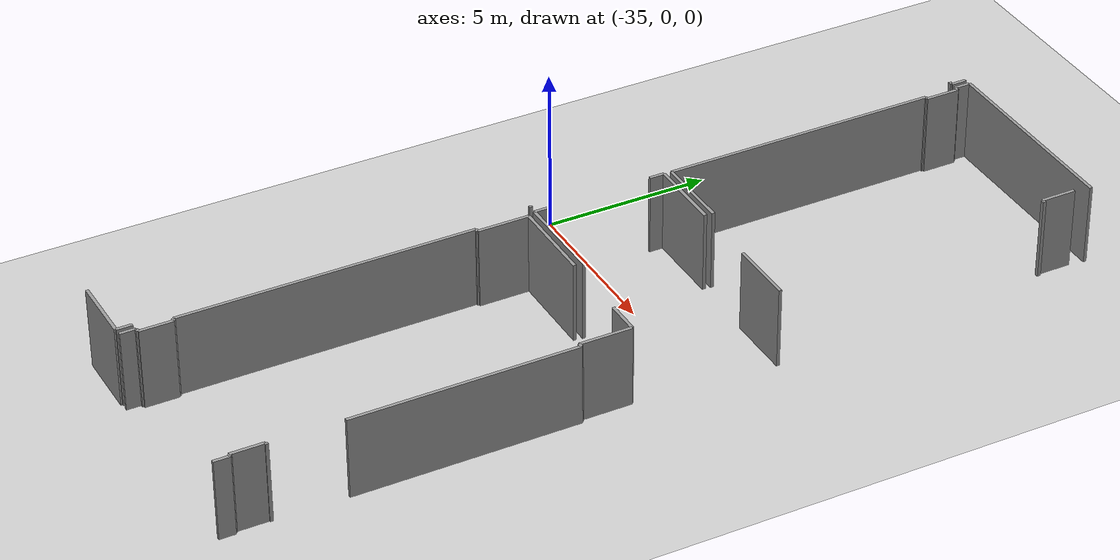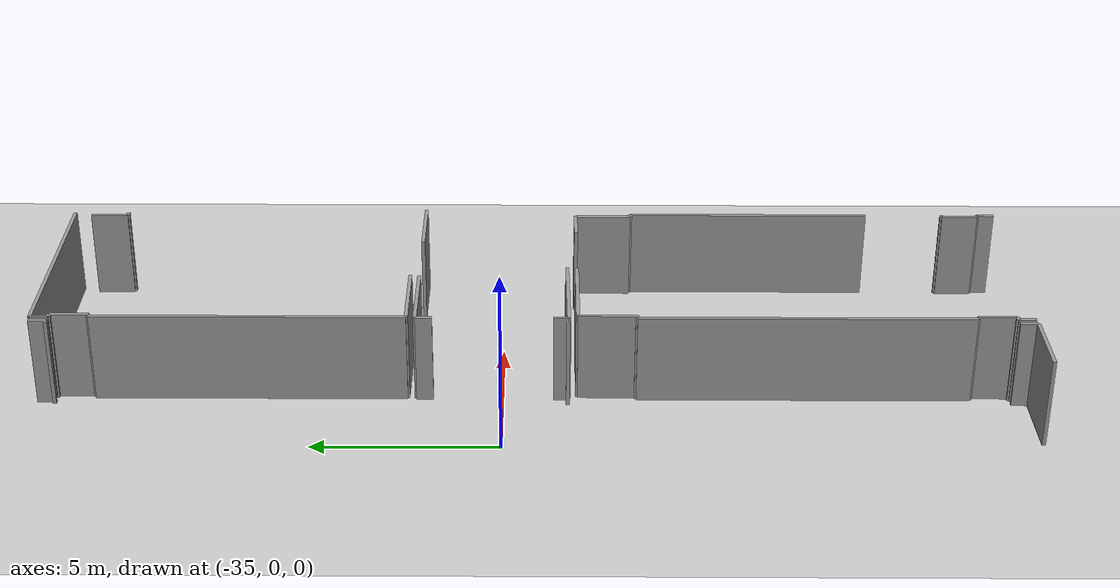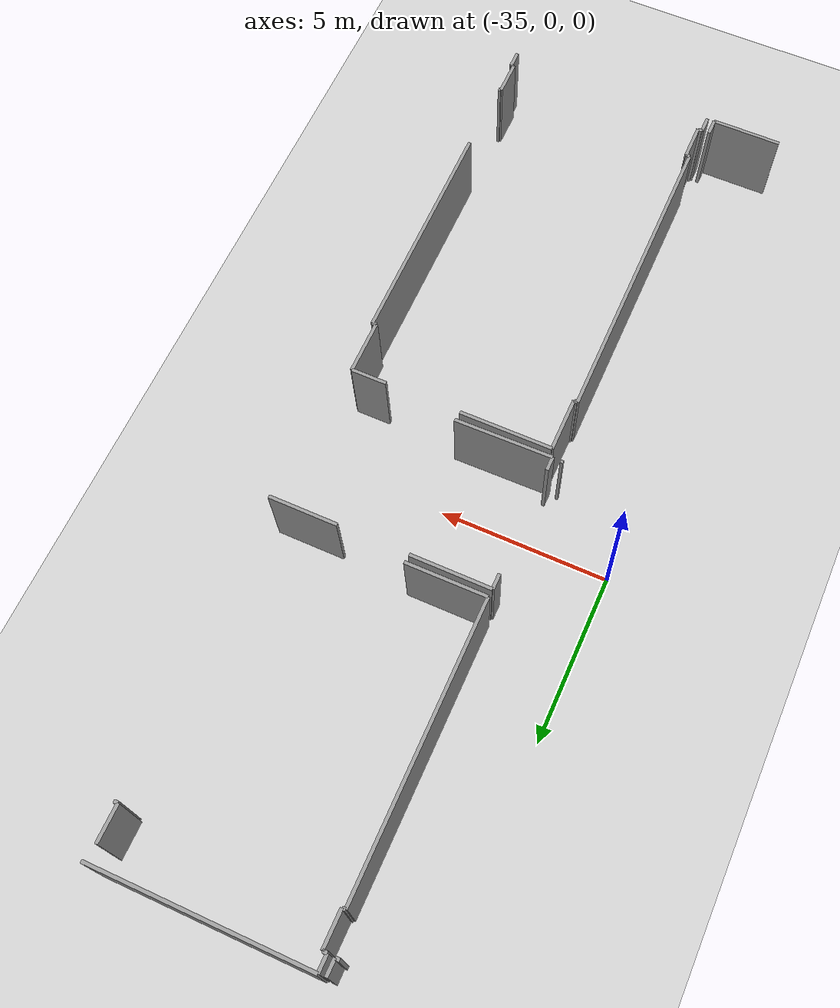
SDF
<sdf version="1.6">
 <world name="default">
  <model name="ground_plane">
   <static>1</static>
   <link name="link">
    <collision name="collision">
     <geometry><plane><normal>0 0 1</normal><size>100 100</size></plane></geometry>
     <surface><friction><ode><mu>100</mu><mu2>50</mu2></ode></friction></surface>
    </collision>
    <visual name="visual">
     <cast_shadows>0</cast_shadows>
     <geometry><plane><normal>0 0 1</normal><size>100 100</size></plane></geometry>
     <material>
      <script><uri>file://media/materials/scripts/gazebo.material</uri><name>Gazebo/Grey</name></script>
     </material>
    </visual>
   </link>
  </model>
  <model name="0510040941_A-40">
   <static>1</static>
   <link name="Wall_2">
    <collision name="Wall_2_Collision">
     <geometry><box><size>0.474212552238 0.1 2.5</size></box></geometry>
     <pose>0.237106276119 0 1.25 0 0 0</pose>
    </collision>
    <visual name="Wall_2_Visual">
     <pose>0.237106276119 0 1.25 0 0 0</pose>
     <geometry><box><size>0.474212552238 0.1 2.5</size></box></geometry>
     <material>
      <script><uri>file://media/materials/scripts/gazebo.material</uri><name>Gazebo/Grey</name></script>
      <ambient>1 1 1 1</ambient>
     </material>
    </visual>
    <pose>25.6161021732 -0.0209267373948 0 0 0 -1.57079632679</pose>
   </link>
   <link name="Wall_3">
    <collision name="Wall_3_Collision">
     <geometry><box><size>0.125179938234 0.1 2.5</size></box></geometry>
     <pose>0.0625899691172 0 1.25 0 0 0</pose>
    </collision>
    <visual name="Wall_3_Visual">
     <pose>0.0625899691172 0 1.25 0 0 0</pose>
     <geometry><box><size>0.125179938234 0.1 2.5</size></box></geometry>
     <material>
      <script><uri>file://media/materials/scripts/gazebo.material</uri><name>Gazebo/Grey</name></script>
      <ambient>1 1 1 1</ambient>
     </material>
    </visual>
    <pose>25.6161021732 -0.495139289632 0 0 0 3.14159265359</pose>
   </link>
   <link name="Wall_8">
    <collision name="Wall_8_Collision">
     <geometry><box><size>0.0811703753496 0.1 2.5</size></box></geometry>
     <pose>0.0405851876748 0 1.25 0 0 0</pose>
    </collision>
    <visual name="Wall_8_Visual">
     <pose>0.0405851876748 0 1.25 0 0 0</pose>
     <geometry><box><size>0.0811703753496 0.1 2.5</size></box></geometry>
     <material>
      <script><uri>file://media/materials/scripts/gazebo.material</uri><name>Gazebo/Grey</name></script>
      <ambient>1 1 1 1</ambient>
     </material>
    </visual>
    <pose>25.5978388388 -14.2906787238 0 0 0 3.14159265359</pose>
   </link>
   <link name="Wall_33">
    <collision name="Wall_33_Collision">
     <geometry><box><size>0.47865155714 0.1 2.5</size></box></geometry>
     <pose>0.23932577857 0 1.25 0 0 0</pose>
    </collision>
    <visual name="Wall_33_Visual">
     <pose>0.23932577857 0 1.25 0 0 0</pose>
     <geometry><box><size>0.47865155714 0.1 2.5</size></box></geometry>
     <material>
      <script><uri>file://media/materials/scripts/gazebo.material</uri><name>Gazebo/Grey</name></script>
      <ambient>1 1 1 1</ambient>
     </material>
    </visual>
    <pose>25.604307103 -26.1830265135 0 0 0 -1.57079632679</pose>
   </link>
   <link name="Wall_34">
    <collision name="Wall_34_Collision">
     <geometry><box><size>2.05728852898 0.1 2.5</size></box></geometry>
     <pose>1.02864426449 0 1.25 0 0 0</pose>
    </collision>
    <visual name="Wall_34_Visual">
     <pose>1.02864426449 0 1.25 0 0 0</pose>
     <geometry><box><size>2.05728852898 0.1 2.5</size></box></geometry>
     <material>
      <script><uri>file://media/materials/scripts/gazebo.material</uri><name>Gazebo/Grey</name></script>
      <ambient>1 1 1 1</ambient>
     </material>
    </visual>
    <pose>25.604307103 -26.6616780707 0 0 0 3.14159265359</pose>
   </link>
   <link name="Wall_38">
    <collision name="Wall_38_Collision">
     <geometry><box><size>8.42599227613 0.1 2.5</size></box></geometry>
     <pose>4.21299613807 0 1.25 0 0 0</pose>
    </collision>
    <visual name="Wall_38_Visual">
     <pose>4.21299613807 0 1.25 0 0 0</pose>
     <geometry><box><size>8.42599227613 0.1 2.5</size></box></geometry>
     <material>
      <script><uri>file://media/materials/scripts/gazebo.material</uri><name>Gazebo/Grey</name></script>
      <ambient>1 1 1 1</ambient>
     </material>
    </visual>
    <pose>25.8578376973 -9.9850976264 0 0 0 1.57079632679</pose>
   </link>
   <link name="Wall_39">
    <collision name="Wall_39_Collision">
     <geometry><box><size>0.0949947049013 0.1 2.5</size></box></geometry>
     <pose>0.0474973524506 0 1.25 0 0 0</pose>
    </collision>
    <visual name="Wall_39_Visual">
     <pose>0.0474973524506 0 1.25 0 0 0</pose>
     <geometry><box><size>0.0949947049013 0.1 2.5</size></box></geometry>
     <material>
      <script><uri>file://media/materials/scripts/gazebo.material</uri><name>Gazebo/Grey</name></script>
      <ambient>1 1 1 1</ambient>
     </material>
    </visual>
    <pose>25.8578376973 -1.55910535027 0 0 0 0.0</pose>
   </link>
   <link name="Wall_40">
    <collision name="Wall_40_Collision">
     <geometry><box><size>1.04062957772 0.1 2.5</size></box></geometry>
     <pose>0.520314788862 0 1.25 0 0 0</pose>
    </collision>
    <visual name="Wall_40_Visual">
     <pose>0.520314788862 0 1.25 0 0 0</pose>
     <geometry><box><size>1.04062957772 0.1 2.5</size></box></geometry>
     <material>
      <script><uri>file://media/materials/scripts/gazebo.material</uri><name>Gazebo/Grey</name></script>
      <ambient>1 1 1 1</ambient>
     </material>
    </visual>
    <pose>25.9528324022 -1.55910535027 0 0 0 1.57079632679</pose>
   </link>
   <link name="Wall_41">
    <collision name="Wall_41_Collision">
     <geometry><box><size>0.128477484733 0.1 2.5</size></box></geometry>
     <pose>0.0642387423665 0 1.25 0 0 0</pose>
    </collision>
    <visual name="Wall_41_Visual">
     <pose>0.0642387423665 0 1.25 0 0 0</pose>
     <geometry><box><size>0.128477484733 0.1 2.5</size></box></geometry>
     <material>
      <script><uri>file://media/materials/scripts/gazebo.material</uri><name>Gazebo/Grey</name></script>
      <ambient>1 1 1 1</ambient>
     </material>
    </visual>
    <pose>25.9528324022 -0.518475772545 0 0 0 3.14159265359</pose>
   </link>
   <link name="Wall_42">
    <collision name="Wall_42_Collision">
     <geometry><box><size>0.497549035151 0.1 2.5</size></box></geometry>
     <pose>0.248774517575 0 1.25 0 0 0</pose>
    </collision>
    <visual name="Wall_42_Visual">
     <pose>0.248774517575 0 1.25 0 0 0</pose>
     <geometry><box><size>0.497549035151 0.1 2.5</size></box></geometry>
     <material>
      <script><uri>file://media/materials/scripts/gazebo.material</uri><name>Gazebo/Grey</name></script>
      <ambient>1 1 1 1</ambient>
     </material>
    </visual>
    <pose>25.8243549175 -0.518475772545 0 0 0 1.57079632679</pose>
   </link>
   <link name="Wall_43">
    <collision name="Wall_43_Collision">
     <geometry><box><size>6.27840170458 0.1 2.5</size></box></geometry>
     <pose>3.13920085229 0 1.25 0 0 0</pose>
    </collision>
    <visual name="Wall_43_Visual">
     <pose>3.13920085229 0 1.25 0 0 0</pose>
     <geometry><box><size>6.27840170458 0.1 2.5</size></box></geometry>
     <material>
      <script><uri>file://media/materials/scripts/gazebo.material</uri><name>Gazebo/Grey</name></script>
      <ambient>1 1 1 1</ambient>
     </material>
    </visual>
    <pose>25.8243549175 -0.0209267373948 0 0 0 0.0</pose>
   </link>
   <link name="Wall_46">
    <collision name="Wall_46_Collision">
     <geometry><box><size>1.05990754187 0.1 2.5</size></box></geometry>
     <pose>0.529953770935 0 1.25 0 0 0</pose>
    </collision>
    <visual name="Wall_46_Visual">
     <pose>0.529953770935 0 1.25 0 0 0</pose>
     <geometry><box><size>1.05990754187 0.1 2.5</size></box></geometry>
     <material>
      <script><uri>file://media/materials/scripts/gazebo.material</uri><name>Gazebo/Grey</name></script>
      <ambient>1 1 1 1</ambient>
     </material>
    </visual>
    <pose>31.9740254799 -0.505412415263 0 0 0 -1.57079632679</pose>
   </link>
   <link name="Wall_47">
    <collision name="Wall_47_Collision">
     <geometry><box><size>0.121248248178 0.1 2.5</size></box></geometry>
     <pose>0.0606241240892 0 1.25 0 0 0</pose>
    </collision>
    <visual name="Wall_47_Visual">
     <pose>0.0606241240892 0 1.25 0 0 0</pose>
     <geometry><box><size>0.121248248178 0.1 2.5</size></box></geometry>
     <material>
      <script><uri>file://media/materials/scripts/gazebo.material</uri><name>Gazebo/Grey</name></script>
      <ambient>1 1 1 1</ambient>
     </material>
    </visual>
    <pose>31.9740254799 -1.56531995713 0 0 0 0.0</pose>
   </link>
   <link name="Wall_50">
    <collision name="Wall_50_Collision">
     <geometry><box><size>2.38503140091 0.1 2.5</size></box></geometry>
     <pose>1.19251570045 0 1.25 0 0 0</pose>
    </collision>
    <visual name="Wall_50_Visual">
     <pose>1.19251570045 0 1.25 0 0 0</pose>
     <geometry><box><size>2.38503140091 0.1 2.5</size></box></geometry>
     <material>
      <script><uri>file://media/materials/scripts/gazebo.material</uri><name>Gazebo/Grey</name></script>
      <ambient>1 1 1 1</ambient>
     </material>
    </visual>
    <pose>28.2428516167 -9.97596595917 0 0 0 -3.13776390335</pose>
   </link>
   <link name="Wall_51">
    <collision name="Wall_51_Collision">
     <geometry><box><size>0.412320141034 0.1 2.5</size></box></geometry>
     <pose>0.206160070517 0 1.25 0 0 0</pose>
    </collision>
    <visual name="Wall_51_Visual">
     <pose>0.206160070517 0 1.25 0 0 0</pose>
     <geometry><box><size>0.412320141034 0.1 2.5</size></box></geometry>
     <material>
      <script><uri>file://media/materials/scripts/gazebo.material</uri><name>Gazebo/Grey</name></script>
      <ambient>1 1 1 1</ambient>
     </material>
    </visual>
    <pose>25.8357695015 -14.3151566652 0 0 0 1.57079632679</pose>
   </link>
   <link name="Wall_52">
    <collision name="Wall_52_Collision">
     <geometry><box><size>0.458612620725 0.1 2.5</size></box></geometry>
     <pose>0.229306310363 0 1.25 0 0 0</pose>
    </collision>
    <visual name="Wall_52_Visual">
     <pose>0.229306310363 0 1.25 0 0 0</pose>
     <geometry><box><size>0.458612620725 0.1 2.5</size></box></geometry>
     <material>
      <script><uri>file://media/materials/scripts/gazebo.material</uri><name>Gazebo/Grey</name></script>
      <ambient>1 1 1 1</ambient>
     </material>
    </visual>
    <pose>25.8357695015 -10.677201905 0 0 0 1.57079632679</pose>
   </link>
   <link name="Wall_53">
    <collision name="Wall_53_Collision">
     <geometry><box><size>2.38197003038 0.1 2.5</size></box></geometry>
     <pose>1.19098501519 0 1.25 0 0 0</pose>
    </collision>
    <visual name="Wall_53_Visual">
     <pose>1.19098501519 0 1.25 0 0 0</pose>
     <geometry><box><size>2.38197003038 0.1 2.5</size></box></geometry>
     <material>
      <script><uri>file://media/materials/scripts/gazebo.material</uri><name>Gazebo/Grey</name></script>
      <ambient>1 1 1 1</ambient>
     </material>
    </visual>
    <pose>25.8357695015 -10.2185892842 0 0 0 0.0</pose>
   </link>
   <link name="Wall_54">
    <collision name="Wall_54_Collision">
     <geometry><box><size>2.02621549466 0.1 2.5</size></box></geometry>
     <pose>1.01310774733 0 1.25 0 0 0</pose>
    </collision>
    <visual name="Wall_54_Visual">
     <pose>1.01310774733 0 1.25 0 0 0</pose>
     <geometry><box><size>2.02621549466 0.1 2.5</size></box></geometry>
     <material>
      <script><uri>file://media/materials/scripts/gazebo.material</uri><name>Gazebo/Grey</name></script>
      <ambient>1 1 1 1</ambient>
     </material>
    </visual>
    <pose>30.3020425764 -10.2185892842 0 0 0 0.0</pose>
   </link>
   <link name="Wall_73">
    <collision name="Wall_73_Collision">
     <geometry><box><size>2.88679560684 0.1 2.5</size></box></geometry>
     <pose>1.44339780342 0 1.25 0 0 0</pose>
    </collision>
    <visual name="Wall_73_Visual">
     <pose>1.44339780342 0 1.25 0 0 0</pose>
     <geometry><box><size>2.88679560684 0.1 2.5</size></box></geometry>
     <material>
      <script><uri>file://media/materials/scripts/gazebo.material</uri><name>Gazebo/Grey</name></script>
      <ambient>1 1 1 1</ambient>
     </material>
    </visual>
    <pose>28.7223909749 -14.2834494873 0 0 0 -3.13060891254</pose>
   </link>
   <link name="Wall_74">
    <collision name="Wall_74_Collision">
     <geometry><box><size>8.99545319069 0.1 2.5</size></box></geometry>
     <pose>4.49772659535 0 1.25 0 0 0</pose>
    </collision>
    <visual name="Wall_74_Visual">
     <pose>4.49772659535 0 1.25 0 0 0</pose>
     <geometry><box><size>8.99545319069 0.1 2.5</size></box></geometry>
     <material>
      <script><uri>file://media/materials/scripts/gazebo.material</uri><name>Gazebo/Grey</name></script>
      <ambient>1 1 1 1</ambient>
     </material>
    </visual>
    <pose>25.8454084836 -25.1232458004 0 0 0 1.57079632679</pose>
   </link>
   <link name="Wall_75">
    <collision name="Wall_75_Collision">
     <geometry><box><size>0.105521487954 0.1 2.5</size></box></geometry>
     <pose>0.0527607439772 0 1.25 0 0 0</pose>
    </collision>
    <visual name="Wall_75_Visual">
     <pose>0.0527607439772 0 1.25 0 0 0</pose>
     <geometry><box><size>0.105521487954 0.1 2.5</size></box></geometry>
     <material>
      <script><uri>file://media/materials/scripts/gazebo.material</uri><name>Gazebo/Grey</name></script>
      <ambient>1 1 1 1</ambient>
     </material>
    </visual>
    <pose>25.8454084836 -16.1277926097 0 0 0 0.0</pose>
   </link>
   <link name="Wall_76">
    <collision name="Wall_76_Collision">
     <geometry><box><size>1.57863697184 0.1 2.5</size></box></geometry>
     <pose>0.789318485919 0 1.25 0 0 0</pose>
    </collision>
    <visual name="Wall_76_Visual">
     <pose>0.789318485919 0 1.25 0 0 0</pose>
     <geometry><box><size>1.57863697184 0.1 2.5</size></box></geometry>
     <material>
      <script><uri>file://media/materials/scripts/gazebo.material</uri><name>Gazebo/Grey</name></script>
      <ambient>1 1 1 1</ambient>
     </material>
    </visual>
    <pose>25.9509299715 -16.1277926097 0 0 0 1.57079632679</pose>
   </link>
   <link name="Wall_77">
    <collision name="Wall_77_Collision">
     <geometry><box><size>2.73062215824 0.1 2.5</size></box></geometry>
     <pose>1.36531107912 0 1.25 0 0 0</pose>
    </collision>
    <visual name="Wall_77_Visual">
     <pose>1.36531107912 0 1.25 0 0 0</pose>
     <geometry><box><size>2.73062215824 0.1 2.5</size></box></geometry>
     <material>
      <script><uri>file://media/materials/scripts/gazebo.material</uri><name>Gazebo/Grey</name></script>
      <ambient>1 1 1 1</ambient>
     </material>
    </visual>
    <pose>25.9509299715 -14.5491556379 0 0 0 0.0</pose>
   </link>
   <link name="Wall_78">
    <collision name="Wall_78_Collision">
     <geometry><box><size>1.04849295784 0.1 2.5</size></box></geometry>
     <pose>0.524246478918 0 1.25 0 0 0</pose>
    </collision>
    <visual name="Wall_78_Visual">
     <pose>0.524246478918 0 1.25 0 0 0</pose>
     <geometry><box><size>1.04849295784 0.1 2.5</size></box></geometry>
     <material>
      <script><uri>file://media/materials/scripts/gazebo.material</uri><name>Gazebo/Grey</name></script>
      <ambient>1 1 1 1</ambient>
     </material>
    </visual>
    <pose>30.907522845 -14.5491556379 0 0 0 0.0</pose>
   </link>
   <link name="Wall_79">
    <collision name="Wall_79_Collision">
     <geometry><box><size>1.57610039761 0.1 2.5</size></box></geometry>
     <pose>0.788050198804 0 1.25 0 0 0</pose>
    </collision>
    <visual name="Wall_79_Visual">
     <pose>0.788050198804 0 1.25 0 0 0</pose>
     <geometry><box><size>1.57610039761 0.1 2.5</size></box></geometry>
     <material>
      <script><uri>file://media/materials/scripts/gazebo.material</uri><name>Gazebo/Grey</name></script>
      <ambient>1 1 1 1</ambient>
     </material>
    </visual>
    <pose>31.9560158029 -14.5491556379 0 0 0 -1.57079632679</pose>
   </link>
   <link name="Wall_80">
    <collision name="Wall_80_Collision">
     <geometry><box><size>0.116048271008 0.1 2.5</size></box></geometry>
     <pose>0.0580241355038 0 1.25 0 0 0</pose>
    </collision>
    <visual name="Wall_80_Visual">
     <pose>0.0580241355038 0 1.25 0 0 0</pose>
     <geometry><box><size>0.116048271008 0.1 2.5</size></box></geometry>
     <material>
      <script><uri>file://media/materials/scripts/gazebo.material</uri><name>Gazebo/Grey</name></script>
      <ambient>1 1 1 1</ambient>
     </material>
    </visual>
    <pose>31.9560158029 -16.1252560355 0 0 0 0.0</pose>
   </link>
   <link name="Wall_81">
    <collision name="Wall_81_Collision">
     <geometry><box><size>6.82630173819 0.1 2.5</size></box></geometry>
     <pose>3.41315086909 0 1.25 0 0 0</pose>
    </collision>
    <visual name="Wall_81_Visual">
     <pose>3.41315086909 0 1.25 0 0 0</pose>
     <geometry><box><size>6.82630173819 0.1 2.5</size></box></geometry>
     <material>
      <script><uri>file://media/materials/scripts/gazebo.material</uri><name>Gazebo/Grey</name></script>
      <ambient>1 1 1 1</ambient>
     </material>
    </visual>
    <pose>32.0720640739 -16.1252560355 0 0 0 -1.57079632679</pose>
   </link>
   <link name="Wall_82">
    <collision name="Wall_82_Collision">
     <geometry><box><size>0.0799020882347 0.1 2.5</size></box></geometry>
     <pose>0.0399510441174 0 1.25 0 0 0</pose>
    </collision>
    <visual name="Wall_82_Visual">
     <pose>0.0399510441174 0 1.25 0 0 0</pose>
     <geometry><box><size>0.0799020882347 0.1 2.5</size></box></geometry>
     <material>
      <script><uri>file://media/materials/scripts/gazebo.material</uri><name>Gazebo/Grey</name></script>
      <ambient>1 1 1 1</ambient>
     </material>
    </visual>
    <pose>32.0720640739 -25.1489920288 0 0 0 3.14159265359</pose>
   </link>
   <link name="Wall_83">
    <collision name="Wall_83_Collision">
     <geometry><box><size>1.01513700672 0.1 2.5</size></box></geometry>
     <pose>0.507568503358 0 1.25 0 0 0</pose>
    </collision>
    <visual name="Wall_83_Visual">
     <pose>0.507568503358 0 1.25 0 0 0</pose>
     <geometry><box><size>1.01513700672 0.1 2.5</size></box></geometry>
     <material>
      <script><uri>file://media/materials/scripts/gazebo.material</uri><name>Gazebo/Grey</name></script>
      <ambient>1 1 1 1</ambient>
     </material>
    </visual>
    <pose>31.9921619856 -25.1489920288 0 0 0 -1.57079632679</pose>
   </link>
   <link name="Wall_84">
    <collision name="Wall_84_Collision">
     <geometry><box><size>0.0880191257697 0.1 2.5</size></box></geometry>
     <pose>0.0440095628848 0 1.25 0 0 0</pose>
    </collision>
    <visual name="Wall_84_Visual">
     <pose>0.0440095628848 0 1.25 0 0 0</pose>
     <geometry><box><size>0.0880191257697 0.1 2.5</size></box></geometry>
     <material>
      <script><uri>file://media/materials/scripts/gazebo.material</uri><name>Gazebo/Grey</name></script>
      <ambient>1 1 1 1</ambient>
     </material>
    </visual>
    <pose>31.9921619856 -26.1641290355 0 0 0 0.0</pose>
   </link>
   <link name="Wall_85">
    <collision name="Wall_85_Collision">
     <geometry><box><size>0.491841743134 0.1 2.5</size></box></geometry>
     <pose>0.245920871567 0 1.25 0 0 0</pose>
    </collision>
    <visual name="Wall_85_Visual">
     <pose>0.245920871567 0 1.25 0 0 0</pose>
     <geometry><box><size>0.491841743134 0.1 2.5</size></box></geometry>
     <material>
      <script><uri>file://media/materials/scripts/gazebo.material</uri><name>Gazebo/Grey</name></script>
      <ambient>1 1 1 1</ambient>
     </material>
    </visual>
    <pose>32.0801811114 -26.1641290355 0 0 0 -1.57079632679</pose>
   </link>
   <link name="Wall_87">
    <collision name="Wall_87_Collision">
     <geometry><box><size>0.482202761061 0.1 2.5</size></box></geometry>
     <pose>0.241101380531 0 1.25 0 0 0</pose>
    </collision>
    <visual name="Wall_87_Visual">
     <pose>0.241101380531 0 1.25 0 0 0</pose>
     <geometry><box><size>0.482202761061 0.1 2.5</size></box></geometry>
     <material>
      <script><uri>file://media/materials/scripts/gazebo.material</uri><name>Gazebo/Grey</name></script>
      <ambient>1 1 1 1</ambient>
     </material>
    </visual>
    <pose>25.8225793155 -26.6559707787 0 0 0 1.57079632679</pose>
   </link>
   <link name="Wall_88">
    <collision name="Wall_88_Collision">
     <geometry><box><size>0.13164820252 0.1 2.5</size></box></geometry>
     <pose>0.06582410126 0 1.25 0 0 0</pose>
    </collision>
    <visual name="Wall_88_Visual">
     <pose>0.06582410126 0 1.25 0 0 0</pose>
     <geometry><box><size>0.13164820252 0.1 2.5</size></box></geometry>
     <material>
      <script><uri>file://media/materials/scripts/gazebo.material</uri><name>Gazebo/Grey</name></script>
      <ambient>1 1 1 1</ambient>
     </material>
    </visual>
    <pose>25.8225793155 -26.1737680176 0 0 0 0.0</pose>
   </link>
   <link name="Wall_89">
    <collision name="Wall_89_Collision">
     <geometry><box><size>1.02541013235 0.1 2.5</size></box></geometry>
     <pose>0.512705066173 0 1.25 0 0 0</pose>
    </collision>
    <visual name="Wall_89_Visual">
     <pose>0.512705066173 0 1.25 0 0 0</pose>
     <geometry><box><size>1.02541013235 0.1 2.5</size></box></geometry>
     <material>
      <script><uri>file://media/materials/scripts/gazebo.material</uri><name>Gazebo/Grey</name></script>
      <ambient>1 1 1 1</ambient>
     </material>
    </visual>
    <pose>25.954227518 -26.1737680176 0 0 0 1.57079632679</pose>
   </link>
   <link name="Wall_90">
    <collision name="Wall_90_Collision">
     <geometry><box><size>0.111679000112 0.1 2.5</size></box></geometry>
     <pose>0.055839500056 0 1.25 0 0 0</pose>
    </collision>
    <visual name="Wall_90_Visual">
     <pose>0.055839500056 0 1.25 0 0 0</pose>
     <geometry><box><size>0.111679000112 0.1 2.5</size></box></geometry>
     <material>
      <script><uri>file://media/materials/scripts/gazebo.material</uri><name>Gazebo/Grey</name></script>
      <ambient>1 1 1 1</ambient>
     </material>
    </visual>
    <pose>25.954227518 -25.1483578853 0 0 0 2.91479380554</pose>
   </link>
   <pose>-58.35 12.5394713145 0 0 0 0</pose>
  </model>
 </world>
</sdf>
